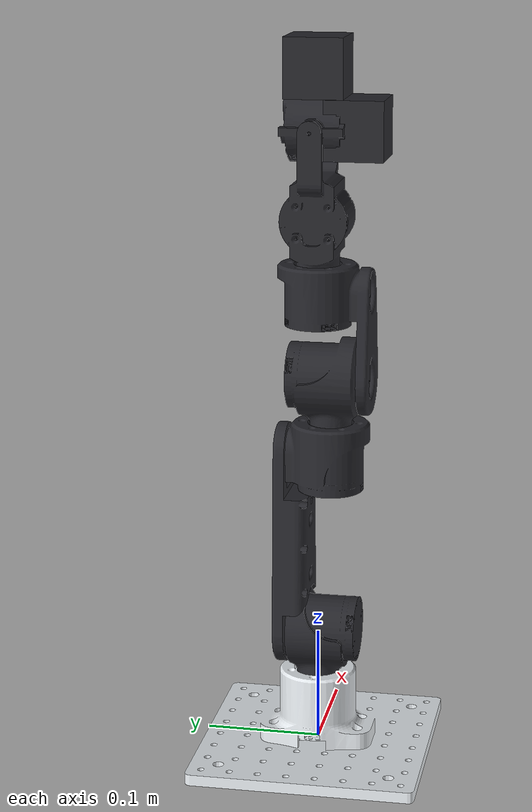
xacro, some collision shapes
<?xml version="1.0" encoding="utf-8"?>
<robot xmlns:xacro="http://ros.org/wiki/xacro" name="arm_bot">

  <!-- Anchor the robot to the world so the base doesn't drift under gravity. -->
  <link name="world"/>
  <joint name="world_to_base" type="fixed">
    <parent link="world"/>
    <child  link="base_link"/>
    <origin xyz="0 0 0" rpy="0 0 0"/>
  </joint>

  <link
    name="base_link">
    <inertial>
      <origin
        xyz="1.82408447749194E-07 3.51716012578392E-06 0.00902025307310225"
        rpy="0 0 0" />
      <mass
        value="0.600112766290217" />
      <inertia
        ixx="0.00142271929258348"
        ixy="-1.84401120983798E-08"
        ixz="2.64639323534756E-09"
        iyy="0.0013839671431916"
        iyz="-9.69141190424078E-08"
        izz="0.00267251954660065" />
    </inertial>
    <visual>
      <origin
        xyz="0 0 0"
        rpy="0 0 0" />
      <geometry>
        <mesh
          filename="package://arm_bot/meshes/base_link.STL" />
      </geometry>
      <material
        name="">
        <color
          rgba="0.894117647058823 0.913725490196078 0.929411764705882 1" />
      </material>
    </visual>
    <collision>
      <origin
        xyz="0 0 0"
        rpy="0 0 0" />
      <geometry>
        <box size="0.05 0.05 0.05" />
      </geometry>
    </collision>
  </link>
  <link
    name="Link_1">
    <inertial>
      <origin
        xyz="-2.25326301170892E-05 -0.00342275072730493 0.0379899100805087"
        rpy="0 0 0" />
      <mass
        value="0.178697895381802" />
      <inertia
        ixx="7.96290461236143E-05"
        ixy="-2.55980621474788E-08"
        ixz="2.94304187269095E-08"
        iyy="9.47363858187909E-05"
        iyz="-6.46778588079736E-06"
        izz="7.81564431392561E-05" />
    </inertial>
    <visual>
      <origin
        xyz="0 0 0"
        rpy="0 0 0" />
      <geometry>
        <mesh
          filename="package://arm_bot/meshes/Link_1.STL" />
      </geometry>
      <material
        name="">
        <color
          rgba="0.15 0.15 0.17 1" />
      </material>
    </visual>
    <collision>
      <origin
        xyz="0 0 0"
        rpy="0 0 0" />
      <geometry>
        <box size="0.05 0.05 0.05" />
      </geometry>
    </collision>
  </link>
  <joint
    name="joint_1"
    type="revolute">
    <origin
      xyz="0 0 0.06325"
      rpy="0 0 0" />
    <parent
      link="base_link" />
    <child
      link="Link_1" />
    <axis
      xyz="0 0 1" />
    <limit
      lower="-3.14"
      upper="3.14"
      effort="80"
      velocity="3" />
      <dynamics damping="0.5" friction="0.1"/>
  </joint>
  <link
    name="Link_2">
    <inertial>
      <origin
        xyz="-2.80274159384641E-05 -0.116318399735538 -0.0228853770620961"
        rpy="0 0 0" />
      <mass
        value="0.348159192515571" />
      <inertia
        ixx="0.000477027991002022"
        ixy="2.15888231822849E-08"
        ixz="1.91263112133737E-08"
        iyy="0.000144550455995752"
        iyz="-3.87745378235415E-06"
        izz="0.000525800936425436" />
    </inertial>
    <visual>
      <origin
        xyz="0 0 0"
        rpy="0 0 0" />
      <geometry>
        <mesh
          filename="package://arm_bot/meshes/Link_2.STL" />
      </geometry>
      <material
        name="">
        <color
          rgba="0.15 0.15 0.17 1" />
      </material>
    </visual>
    <collision>
      <origin
        xyz="0 0 0"
        rpy="0 0 0" />
      <geometry>
        <box size="0.05 0.05 0.05" />
      </geometry>
    </collision>
  </link>
  <joint
    name="joint_2"
    type="revolute">
    <origin
      xyz="0 0.03075 0.0419"
      rpy="-1.5708 0 0" />
    <parent
      link="Link_1" />
    <child
      link="Link_2" />
    <axis
      xyz="0 0 1" />
    <limit
      lower="-1.5708"
      upper="1.5708"
      effort="80"
      velocity="3" />
      <dynamics damping="0.5" friction="0.1"/>
  </joint>
  <link
    name="Link_3">
    <inertial>
      <origin
        xyz="-2.31977251451965E-05 0.00291620685841659 0.0400293534087893"
        rpy="0 0 0" />
      <mass
        value="0.179709253045907" />
      <inertia
        ixx="8.11995141559795E-05"
        ixy="3.02662559212822E-08"
        ixz="1.22308541785918E-08"
        iyy="9.67926159536252E-05"
        iyz="6.76084403303808E-06"
        izz="7.86977187926689E-05" />
    </inertial>
    <visual>
      <origin
        xyz="0 0 0"
        rpy="0 0 0" />
      <geometry>
        <mesh
          filename="package://arm_bot/meshes/Link_3.STL" />
      </geometry>
      <material
        name="">
        <color
          rgba="0.15 0.15 0.17 1" />
      </material>
    </visual>
    <collision>
      <origin
        xyz="0 0 0"
        rpy="0 0 0" />
      <geometry>
        <box size="0.05 0.05 0.05" />
      </geometry>
    </collision>
  </link>
  <joint
    name="joint_3"
    type="revolute">
    <origin
      xyz="0 -0.1858 -0.0419"
      rpy="1.5708 0 0" />
    <parent
      link="Link_2" />
    <child
      link="Link_3" />
    <axis
      xyz="0 0 -1" />
    <limit
      lower="-3.14"
      upper="3.14"
      effort="80"
      velocity="3" />
      <dynamics damping="0.5" friction="0.1"/>
  </joint>
  <link
    name="Link_4">
    <inertial>
      <origin
        xyz="2.13115813275933E-06 0.0597212181397539 -0.029199947092636"
        rpy="0 0 0" />
      <mass
        value="0.211779849616449" />
      <inertia
        ixx="0.000116526342724511"
        ixy="-4.30364662012504E-09"
        ixz="-9.6691440600656E-08"
        iyy="9.63481513847041E-05"
        iyz="4.49677418706646E-06"
        izz="0.000132714805957377" />
    </inertial>
    <visual>
      <origin
        xyz="0 0 0"
        rpy="0 0 0" />
      <geometry>
        <mesh
          filename="package://arm_bot/meshes/Link_4.STL" />
      </geometry>
      <material
        name="">
        <color
          rgba="0.15 0.15 0.17 1" />
      </material>
    </visual>
    <collision>
      <origin
        xyz="0 0 0"
        rpy="0 0 0" />
      <geometry>
        <box size="0.05 0.05 0.05" />
      </geometry>
    </collision>
  </link>
  <joint
    name="joint_4"
    type="revolute">
    <origin
      xyz="0 -0.03125 0.0442"
      rpy="1.5708 0 0" />
    <parent
      link="Link_3" />
    <child
      link="Link_4" />
    <axis
      xyz="0 0 1" />
    <limit
      lower="-1.5708"
      upper="1.5708"
      effort="80"
      velocity="3" />
      <dynamics damping="0.5" friction="0.1"/>
  </joint>
  <link
    name="Link_5">
    <inertial>
      <origin
        xyz="-0.0017723327104861 2.15124878880438E-06 0.0455126048772683"
        rpy="0 0 0" />
      <mass
        value="0.15908104719164" />
      <inertia
        ixx="5.68632890424796E-05"
        ixy="-7.82508226968812E-10"
        ixz="-5.82924097998462E-07"
        iyy="7.16893594239922E-05"
        iyz="-2.69202150194192E-08"
        izz="6.77401522669966E-05" />
    </inertial>
    <visual>
      <origin
        xyz="0 0 0"
        rpy="0 0 0" />
      <geometry>
        <mesh
          filename="package://arm_bot/meshes/Link_5.STL" />
      </geometry>
      <material
        name="">
        <color
          rgba="0.15 0.15 0.17 1" />
      </material>
    </visual>
    <collision>
      <origin
        xyz="0 0 0"
        rpy="0 0 0" />
      <geometry>
        <box size="0.05 0.05 0.05" />
      </geometry>
    </collision>
  </link>
  <joint
    name="joint_5"
    type="revolute">
    <origin
      xyz="0 0.09375 -0.0424"
      rpy="-1.5708 0 0" />
    <parent
      link="Link_4" />
    <child
      link="Link_5" />
    <axis
      xyz="0 0 -1" />
    <limit
      lower="-3.14"
      upper="3.14"
      effort="80"
      velocity="3" />
      <dynamics damping="0.5" friction="0.1"/>
  </joint>
  <link
    name="Link_6">
    <inertial>
      <origin
        xyz="-0.0010954 -0.00018174 -0.040472"
        rpy="0 0 0" />
      <mass
        value="0.11675" />
      <inertia
        ixx="4.3059E-05"
        ixy="-6.2343E-08"
        ixz="6.1093E-08"
        iyy="3.3174E-05"
        iyz="1.3031E-07"
        izz="3.334E-05" />
    </inertial>
    <visual>
      <origin
        xyz="0 0 0"
        rpy="0 0 0" />
      <geometry>
        <mesh
          filename="package://arm_bot/meshes/Link_6.STL" />
      </geometry>
      <material
        name="">
        <color
          rgba="0.15 0.15 0.17 1" />
      </material>
    </visual>
    <collision>
      <origin
        xyz="0 0 0"
        rpy="0 0 0" />
      <geometry>
        <box size="0.05 0.05 0.05" />
      </geometry>
    </collision>
  </link>
  <joint
    name="joint_6"
    type="revolute">
    <origin
      xyz="0.0405 0 0.11837"
      rpy="1.5708 0 1.5708" />
    <parent
      link="Link_5" />
    <child
      link="Link_6" />
    <axis
      xyz="0 0 1" />
    <limit
      lower="-0.48869"
      upper="0.2618"
      effort="80"
      velocity="3" />
      <dynamics damping="0.5" friction="0.1"/>
  </joint>
  <link
    name="Link_7">
    <inertial>
      <origin
        xyz="-0.00045228 0.013833 0.027141"
        rpy="0 0 0" />
      <mass
        value="0.020351" />
      <inertia
        ixx="5.7603E-06"
        ixy="1.4711E-07"
        ixz="-6.4949E-09"
        iyy="1.2412E-06"
        iyz="1.951E-07"
        izz="6.7452E-06" />
    </inertial>
    <visual>
      <origin
        xyz="0 0 0"
        rpy="0 0 0" />
      <geometry>
        <mesh
          filename="package://arm_bot/meshes/Link_7.STL" />
      </geometry>
      <material
        name="">
        <color
          rgba="0.15 0.15 0.17 1" />
      </material>
    </visual>
    <collision>
      <origin
        xyz="0 0 0"
        rpy="0 0 0" />
      <geometry>
        <box size="0.05 0.05 0.05" />
      </geometry>
    </collision>
  </link>
  <joint
    name="joint_7"
    type="revolute">
    <origin
      xyz="-0.0335 0.00015003 -0.0405"
      rpy="0 1.5708 0" />
    <parent
      link="Link_6" />
    <child
      link="Link_7" />
    <axis
      xyz="0 0.0044784 -0.99999" />
    <limit
      lower="-1.5708"
      upper="1.5708"
      effort="80"
      velocity="3" />
      <dynamics damping="0.5" friction="0.1"/>
  </joint>
  <link
    name="ee">
    <inertial>
      <origin
        xyz="-9.67727459322693E-05 -1.33416526664366E-05 -0.00297909515214412"
        rpy="0 0 0" />
      <mass
        value="0.0119347262769104" />
      <inertia
        ixx="2.18322486775654E-06"
        ixy="2.59604774286172E-10"
        ixz="5.79678802798981E-08"
        iyy="1.85971321951526E-06"
        iyz="9.43233835191567E-09"
        izz="3.96584433984964E-06" />
    </inertial>
    <visual>
      <origin
        xyz="0 0 0"
        rpy="0 0 0" />
      <geometry>
        <mesh
          filename="package://arm_bot/meshes/ee.STL" />
      </geometry>
      <material
        name="">
        <color
          rgba="0.15 0.15 0.17 1" />
      </material>
    </visual>
    <collision>
      <origin
        xyz="0 0 0"
        rpy="0 0 0" />
      <geometry>
        <box size="0.05 0.05 0.05" />
      </geometry>
    </collision>
  </link>
  <joint
    name="fix"
    type="fixed">
    <origin
      xyz="-0.00162332444702011 0.0498231143785569 0.0337234649963674"
      rpy="1.5707963267949 0 3.14159265358979" />
    <parent
      link="Link_7" />
    <child
      link="ee" />
    <axis
      xyz="0 0 0" />
  </joint>
</robot>
